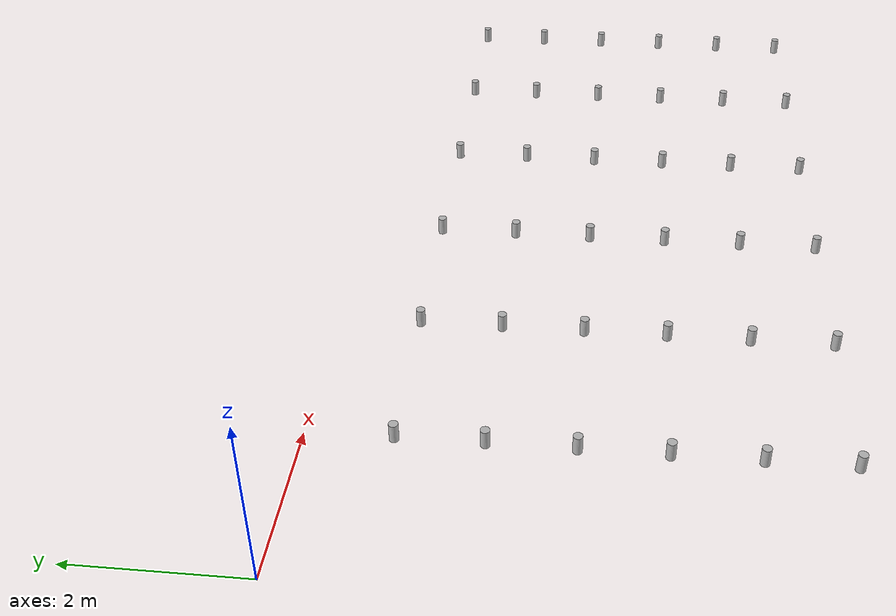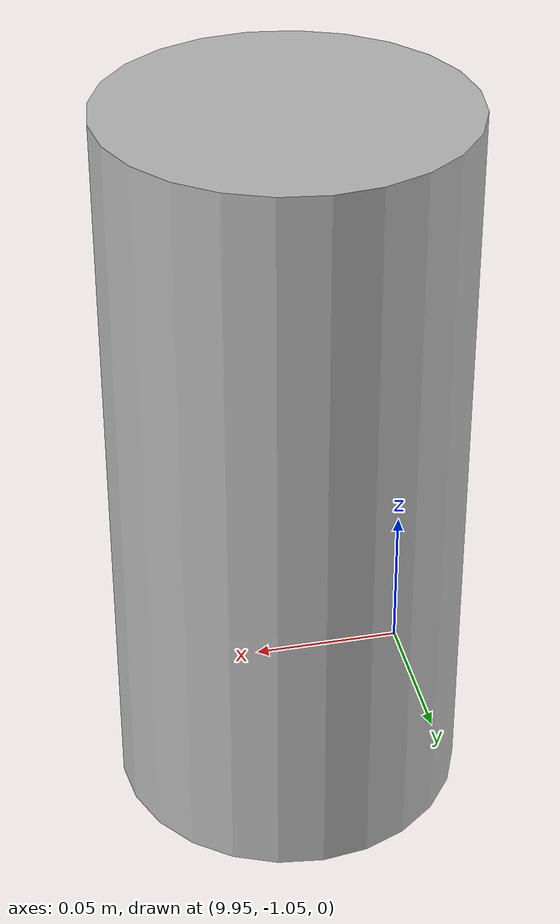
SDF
<sdf version="1.4">
 <world name="myworld">
  <include><uri>model://sun</uri></include>
  <include><uri>model://CropWithWeed</uri><name>Crop_with_weed</name><pose>12 -1 0   0 0 0</pose></include>
  <include><uri>model://CropWithWeed</uri><name>Crop_with_weed</name><pose>2 -1 0   0 0 0</pose></include>
  <include><uri>model://CropWithWeed</uri><name>Crop_with_weed</name><pose>4 -1 0   0 0 0</pose></include>
  <include><uri>model://CropWithWeed</uri><name>Crop_with_weed</name><pose>6 -1 0   0 0 0</pose></include>
  <include><uri>model://CropWithWeed</uri><name>Crop_with_weed</name><pose>8 -1 0   0 0 0</pose></include>
  <include><uri>model://CropWithWeed</uri><name>Crop_with_weed</name><pose>10 -1 0   0 0 0</pose></include>
  <include><uri>model://CropWithWeed</uri><name>Crop_with_weed</name><pose>12 -2 0   0 0 0</pose></include>
  <include><uri>model://CropWithWeed</uri><name>Crop_with_weed</name><pose>2 -2 0   0 0 0</pose></include>
  <include><uri>model://CropWithWeed</uri><name>Crop_with_weed</name><pose>4 -2 0   0 0 0</pose></include>
  <include><uri>model://CropWithWeed</uri><name>Crop_with_weed</name><pose>6 -2 0   0 0 0</pose></include>
  <include><uri>model://CropWithWeed</uri><name>Crop_with_weed</name><pose>8 -2 0   0 0 0</pose></include>
  <include><uri>model://CropWithWeed</uri><name>Crop_with_weed</name><pose>10 -2 0   0 0 0</pose></include>
  <include><uri>model://CropWithWeed</uri><name>Crop_with_weed</name><pose>12 -3 0   0 0 0</pose></include>
  <include><uri>model://CropWithWeed</uri><name>Crop_with_weed</name><pose>2 -3 0   0 0 0</pose></include>
  <include><uri>model://CropWithWeed</uri><name>Crop_with_weed</name><pose>4 -3 0   0 0 0</pose></include>
  <include><uri>model://CropWithWeed</uri><name>Crop_with_weed</name><pose>6 -3 0   0 0 0</pose></include>
  <include><uri>model://CropWithWeed</uri><name>Crop_with_weed</name><pose>8 -3 0   0 0 0</pose></include>
  <include><uri>model://CropWithWeed</uri><name>Crop_with_weed</name><pose>10 -3 0   0 0 0</pose></include>
  <include><uri>model://CropWithWeed</uri><name>Crop_with_weed</name><pose>12 -4 0   0 0 0</pose></include>
  <include><uri>model://CropWithWeed</uri><name>Crop_with_weed</name><pose>2 -4 0   0 0 0</pose></include>
  <include><uri>model://CropWithWeed</uri><name>Crop_with_weed</name><pose>4 -4 0   0 0 0</pose></include>
  <include><uri>model://CropWithWeed</uri><name>Crop_with_weed</name><pose>6 -4 0   0 0 0</pose></include>
  <include><uri>model://CropWithWeed</uri><name>Crop_with_weed</name><pose>8 -4 0   0 0 0</pose></include>
  <include><uri>model://CropWithWeed</uri><name>Crop_with_weed</name><pose>10 -4 0   0 0 0</pose></include>
  <include><uri>model://CropWithWeed</uri><name>Crop_with_weed</name><pose>12 -5 0   0 0 0</pose></include>
  <include><uri>model://CropWithWeed</uri><name>Crop_with_weed</name><pose>2 -5 0   0 0 0</pose></include>
  <include><uri>model://CropWithWeed</uri><name>Crop_with_weed</name><pose>4 -5 0   0 0 0</pose></include>
  <include><uri>model://CropWithWeed</uri><name>Crop_with_weed</name><pose>6 -5 0   0 0 0</pose></include>
  <include><uri>model://CropWithWeed</uri><name>Crop_with_weed</name><pose>8 -5 0   0 0 0</pose></include>
  <include><uri>model://CropWithWeed</uri><name>Crop_with_weed</name><pose>10 -5 0   0 0 0</pose></include>
  <include><uri>model://CropWithWeed</uri><name>Crop_with_weed</name><pose>12 -6 0   0 0 0</pose></include>
  <include><uri>model://CropWithWeed</uri><name>Crop_with_weed</name><pose>2 -6 0   0 0 0</pose></include>
  <include><uri>model://CropWithWeed</uri><name>Crop_with_weed</name><pose>4 -6 0   0 0 0</pose></include>
  <include><uri>model://CropWithWeed</uri><name>Crop_with_weed</name><pose>6 -6 0   0 0 0</pose></include>
  <include><uri>model://CropWithWeed</uri><name>Crop_with_weed</name><pose>8 -6 0   0 0 0</pose></include>
  <include><uri>model://CropWithWeed</uri><name>Crop_with_weed</name><pose>10 -6 0   0 0 0</pose></include>
 </world>
</sdf>

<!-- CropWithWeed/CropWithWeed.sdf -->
<sdf version="1.5">
  <model name="CropWithWeed">
    <link name="link">
      <pose>0 0 0.115 0 0 0</pose>
      <inertial>
        <mass>0.390</mass>
        <inertia>
          <ixx>0.00058</ixx>
          <ixy>0</ixy>
          <ixz>0</ixz>
          <iyy>0.00058</iyy>
          <iyz>0</iyz>
          <izz>0.00019</izz>
        </inertia>
      </inertial>
      <collision name="collision">
        <geometry>
          <cylinder>
            <radius>0.055000</radius>
            <length>0.230000</length>
          </cylinder>
        </geometry>
      </collision>
      <visual name="visual">
        <geometry>
          <cylinder>
            <radius>0.055000</radius>
            <length>0.230000</length>
          </cylinder>
        </geometry>
        <material>
          <script>
            <uri>model://CropWithWeed/materials/scripts</uri>
            <uri>model://CropWithWeed/materials/textures</uri>
            <name>CropWithWeed/Diffuse</name>
          </script>
        </material>
      </visual>
    </link>
  </model>
</sdf>
